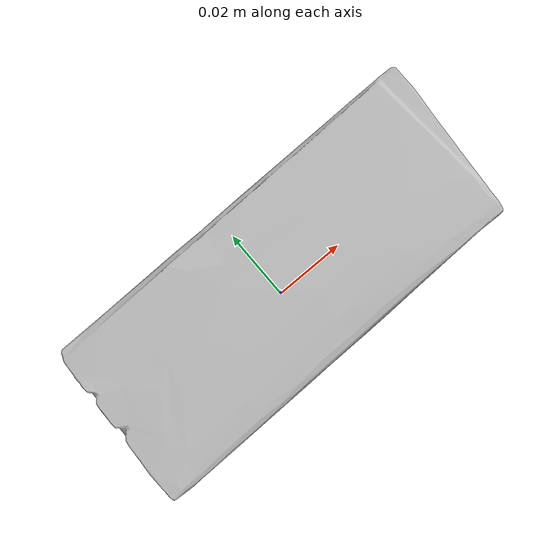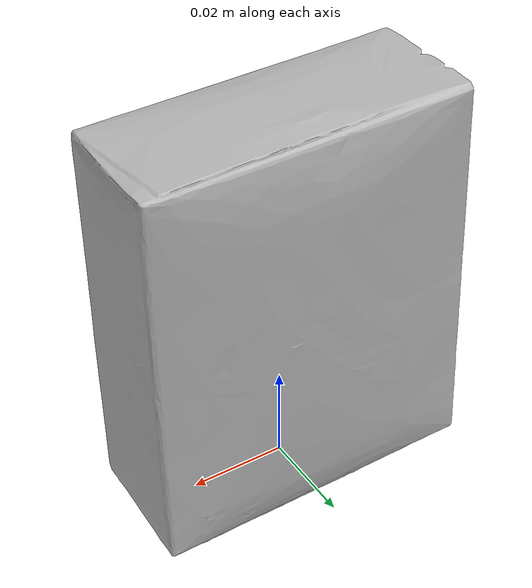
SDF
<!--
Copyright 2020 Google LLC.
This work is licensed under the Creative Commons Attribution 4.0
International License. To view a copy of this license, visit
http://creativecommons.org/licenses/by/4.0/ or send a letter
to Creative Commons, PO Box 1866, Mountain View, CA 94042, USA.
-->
<?xml version="1.0" ?>
<sdf version="1.6">
  <model name="Bradshaw_International_11642_7_Qt_MP_Plastic_Bowl">
    <link name="link_0">
      <visual name="visual">
        <geometry>
          <mesh>
            <uri>meshes/model.obj</uri>
            <scale>0.5 0.5 0.5</scale>
          </mesh>
        </geometry>
      </visual>
      <collision name="collision_0">
        <geometry>
          <mesh>
            <uri>meshes/model.obj</uri>
            <scale>0.5 0.5 0.5</scale>
          </mesh>
        </geometry>
      </collision>
    </link>
  </model>
</sdf>
